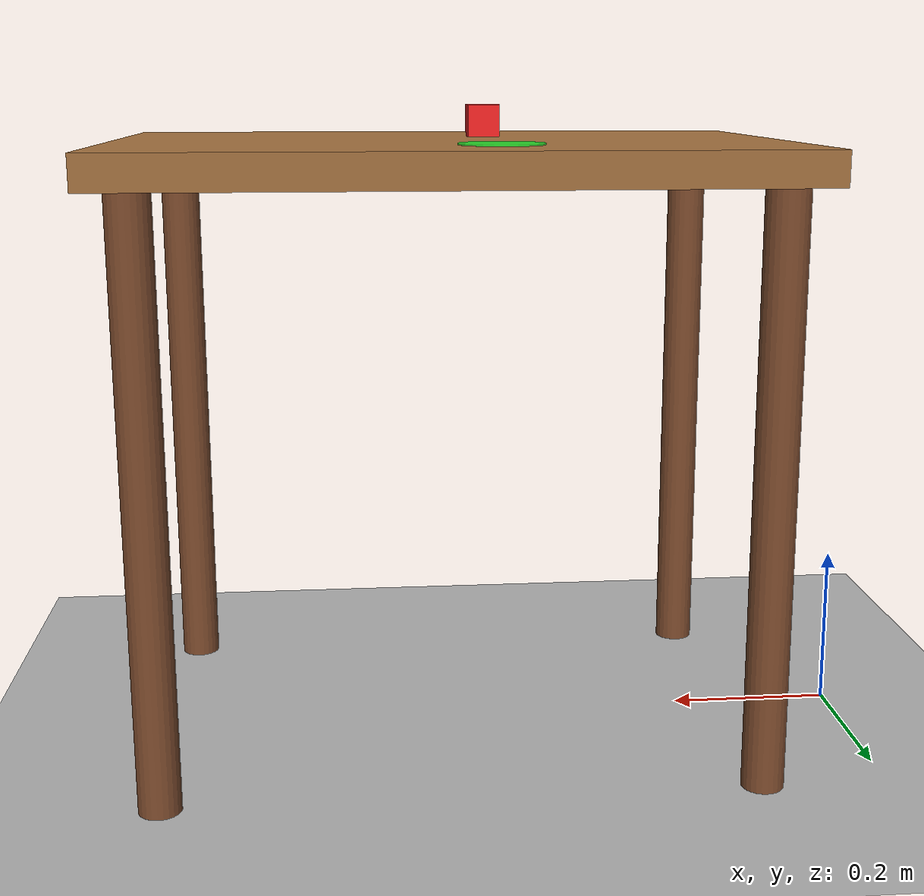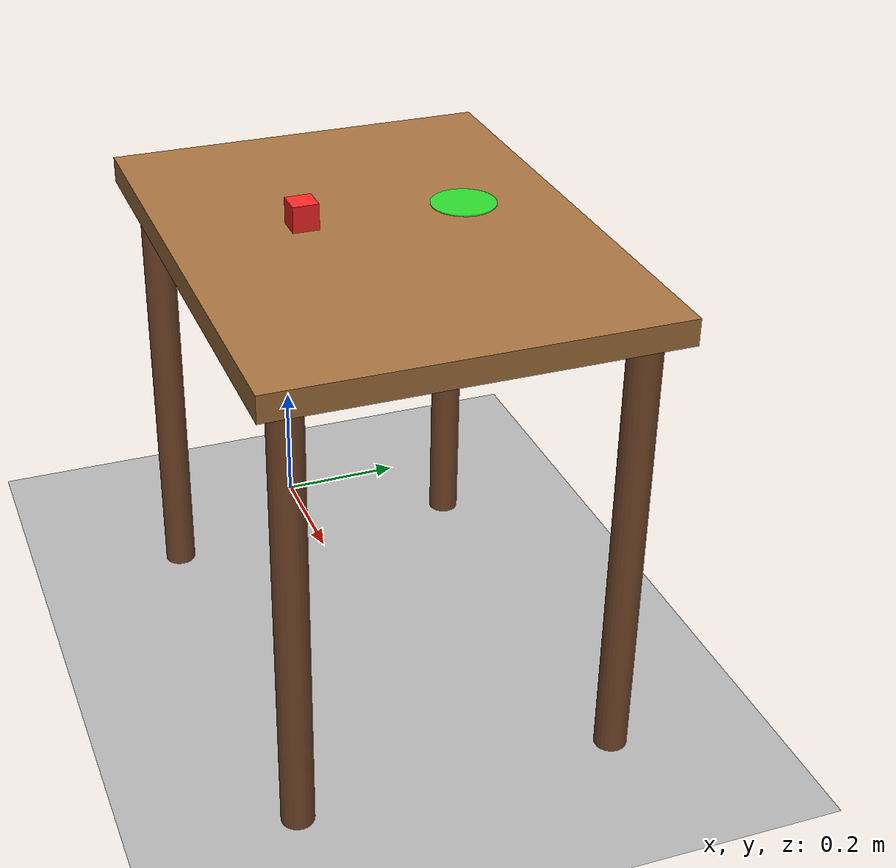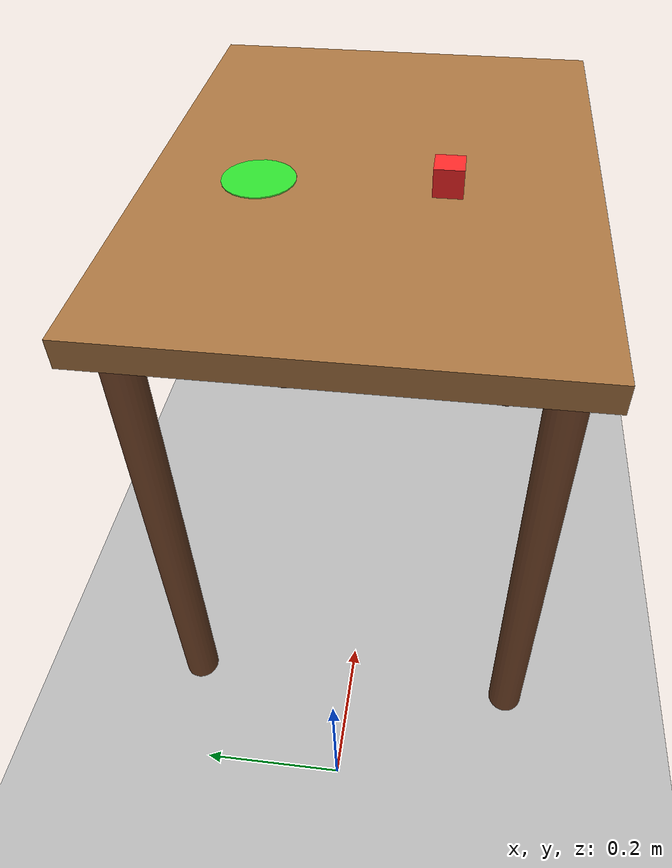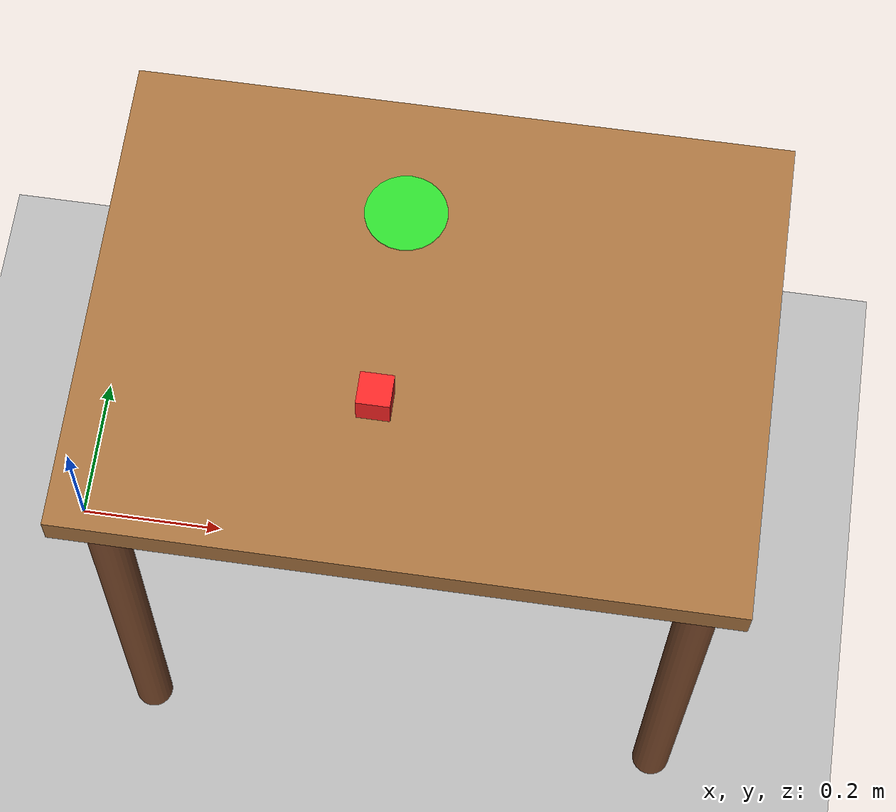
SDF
<?xml version="1.0"?>
<!--
  Pick-and-Place Gazebo World
  Contains: ground plane, lighting, table, colored cube (pick object), target zone
-->
<sdf version="1.9">
  <world name="pick_place_world">

    <!-- Physics -->
    <physics name="default_physics" type="ode">
      <max_step_size>0.001</max_step_size>
      <real_time_factor>1.0</real_time_factor>
      <real_time_update_rate>1000</real_time_update_rate>
    </physics>

    <!-- Plugins -->
    <plugin filename="gz-sim-physics-system" name="gz::sim::systems::Physics"/>
    <plugin filename="gz-sim-user-commands-system" name="gz::sim::systems::UserCommands"/>
    <plugin filename="gz-sim-scene-broadcaster-system" name="gz::sim::systems::SceneBroadcaster"/>
    <plugin filename="gz-sim-sensors-system" name="gz::sim::systems::Sensors">
      <render_engine>ogre2</render_engine>
    </plugin>
    <plugin filename="gz-sim-contact-system" name="gz::sim::systems::Contact"/>

    <!-- Scene / Lighting -->
    <scene>
      <ambient>0.4 0.4 0.4 1.0</ambient>
      <background>0.7 0.8 0.9 1.0</background>
      <shadows>true</shadows>
    </scene>

    <light type="directional" name="sun">
      <cast_shadows>true</cast_shadows>
      <pose>0 0 10 0 0 0</pose>
      <diffuse>0.9 0.9 0.85 1</diffuse>
      <specular>0.3 0.3 0.3 1</specular>
      <direction>-0.5 0.1 -0.9</direction>
    </light>

    <light type="point" name="fill_light">
      <pose>2 -2 3 0 0 0</pose>
      <diffuse>0.4 0.4 0.45 1</diffuse>
      <specular>0.1 0.1 0.1 1</specular>
      <attenuation>
        <range>20</range>
        <constant>0.5</constant>
        <linear>0.01</linear>
        <quadratic>0.001</quadratic>
      </attenuation>
    </light>

    <!-- Ground Plane -->
    <model name="ground_plane">
      <static>true</static>
      <link name="link">
        <collision name="collision">
          <geometry>
            <plane>
              <normal>0 0 1</normal>
              <size>50 50</size>
            </plane>
          </geometry>
          <surface>
            <friction>
              <ode>
                <mu>100</mu>
                <mu2>50</mu2>
              </ode>
            </friction>
          </surface>
        </collision>
        <visual name="visual">
          <geometry>
            <plane>
              <normal>0 0 1</normal>
              <size>50 50</size>
            </plane>
          </geometry>
          <material>
            <ambient>0.6 0.6 0.6 1</ambient>
            <diffuse>0.7 0.7 0.7 1</diffuse>
          </material>
        </visual>
      </link>
    </model>

    <!-- ==================== TABLE ==================== -->
    <model name="table">
      <static>true</static>
      <pose>0.5 0 0 0 0 0</pose>
      <!-- Table top -->
      <link name="table_top">
        <pose>0 0 0.72 0 0 0</pose>
        <collision name="collision">
          <geometry>
            <box><size>0.8 0.6 0.04</size></box>
          </geometry>
          <surface>
            <friction>
              <ode><mu>0.8</mu><mu2>0.8</mu2></ode>
            </friction>
          </surface>
        </collision>
        <visual name="visual">
          <geometry>
            <box><size>0.8 0.6 0.04</size></box>
          </geometry>
          <material>
            <ambient>0.55 0.35 0.2 1</ambient>
            <diffuse>0.65 0.45 0.25 1</diffuse>
            <specular>0.2 0.15 0.1 1</specular>
          </material>
        </visual>
      </link>
      <!-- Table legs -->
      <link name="leg1">
        <pose>0.35 0.25 0.35 0 0 0</pose>
        <collision name="collision"><geometry><cylinder><radius>0.025</radius><length>0.7</length></cylinder></geometry></collision>
        <visual name="visual"><geometry><cylinder><radius>0.025</radius><length>0.7</length></cylinder></geometry>
          <material><ambient>0.4 0.25 0.15 1</ambient><diffuse>0.5 0.3 0.18 1</diffuse></material>
        </visual>
      </link>
      <link name="leg2">
        <pose>-0.35 0.25 0.35 0 0 0</pose>
        <collision name="collision"><geometry><cylinder><radius>0.025</radius><length>0.7</length></cylinder></geometry></collision>
        <visual name="visual"><geometry><cylinder><radius>0.025</radius><length>0.7</length></cylinder></geometry>
          <material><ambient>0.4 0.25 0.15 1</ambient><diffuse>0.5 0.3 0.18 1</diffuse></material>
        </visual>
      </link>
      <link name="leg3">
        <pose>0.35 -0.25 0.35 0 0 0</pose>
        <collision name="collision"><geometry><cylinder><radius>0.025</radius><length>0.7</length></cylinder></geometry></collision>
        <visual name="visual"><geometry><cylinder><radius>0.025</radius><length>0.7</length></cylinder></geometry>
          <material><ambient>0.4 0.25 0.15 1</ambient><diffuse>0.5 0.3 0.18 1</diffuse></material>
        </visual>
      </link>
      <link name="leg4">
        <pose>-0.35 -0.25 0.35 0 0 0</pose>
        <collision name="collision"><geometry><cylinder><radius>0.025</radius><length>0.7</length></cylinder></geometry></collision>
        <visual name="visual"><geometry><cylinder><radius>0.025</radius><length>0.7</length></cylinder></geometry>
          <material><ambient>0.4 0.25 0.15 1</ambient><diffuse>0.5 0.3 0.18 1</diffuse></material>
        </visual>
      </link>
      <joint name="top_to_leg1" type="fixed"><parent>table_top</parent><child>leg1</child></joint>
      <joint name="top_to_leg2" type="fixed"><parent>table_top</parent><child>leg2</child></joint>
      <joint name="top_to_leg3" type="fixed"><parent>table_top</parent><child>leg3</child></joint>
      <joint name="top_to_leg4" type="fixed"><parent>table_top</parent><child>leg4</child></joint>
    </model>

    <!-- ==================== PICK OBJECT (Red Cube) ==================== -->
    <model name="red_cube">
      <pose>0.45 -0.1 0.76 0 0 0</pose>
      <link name="link">
        <inertial>
          <mass>0.1</mass>
          <inertia>
            <ixx>0.0000267</ixx><ixy>0</ixy><ixz>0</ixz>
            <iyy>0.0000267</iyy><iyz>0</iyz>
            <izz>0.0000267</izz>
          </inertia>
        </inertial>
        <collision name="collision">
          <geometry>
            <box><size>0.04 0.04 0.04</size></box>
          </geometry>
          <surface>
            <friction>
              <ode><mu>1.0</mu><mu2>1.0</mu2></ode>
            </friction>
            <contact>
              <ode>
                <kp>1e6</kp>
                <kd>100</kd>
                <max_vel>0.01</max_vel>
                <min_depth>0.001</min_depth>
              </ode>
            </contact>
          </surface>
        </collision>
        <visual name="visual">
          <geometry>
            <box><size>0.04 0.04 0.04</size></box>
          </geometry>
          <material>
            <ambient>0.9 0.1 0.1 1</ambient>
            <diffuse>1.0 0.15 0.15 1</diffuse>
            <specular>0.5 0.2 0.2 1</specular>
          </material>
        </visual>
      </link>
    </model>

    <!-- ==================== TARGET ZONE (Green marker on table) ==================== -->
    <model name="target_zone">
      <static>true</static>
      <pose>0.45 0.15 0.741 0 0 0</pose>
      <link name="link">
        <visual name="visual">
          <geometry>
            <cylinder>
              <radius>0.05</radius>
              <length>0.002</length>
            </cylinder>
          </geometry>
          <material>
            <ambient>0.1 0.9 0.2 1</ambient>
            <diffuse>0.1 1.0 0.2 0.8</diffuse>
          </material>
        </visual>
      </link>
    </model>

  </world>
</sdf>
